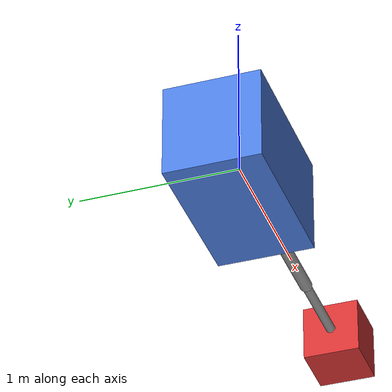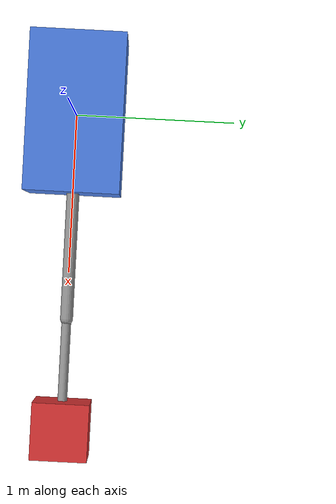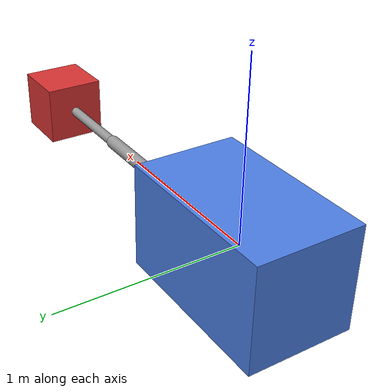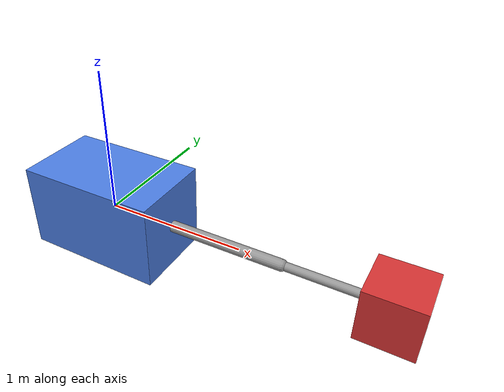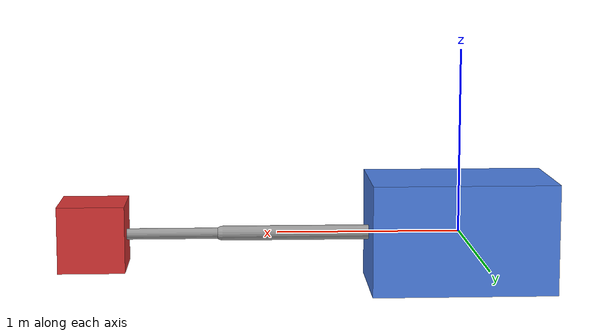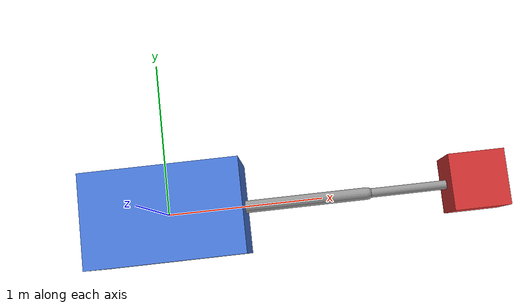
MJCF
<mujoco model="capture_arm">
  <compiler angle="radian"/>
  <option timestep="0.01" gravity="0 0 0">
    <flag contact="enable"/>
  </option>

  <default>
    <joint damping="0.5" armature="0.01"/>
    <geom condim="3" friction="0.5 0.005 0.0001"
          solref="0.01 1" solimp="0.9 0.95 0.001"
          rgba="0.6 0.6 0.6 1"/>
  </default>

  <worldbody>
    <!-- ============ Chaser bus + arm ============ -->
    <body name="spacecraft" pos="0 0 0">
      <freejoint name="base"/>
      <geom name="bus" type="box" size="0.5 0.3 0.3" mass="200"
            rgba="0.3 0.5 0.9 1" contype="1" conaffinity="1"/>

      <!-- Shoulder -->
      <body name="link1" pos="0.5 0 0">
        <joint name="shoulder" type="hinge" axis="0 1 0" range="-3.14 3.14"/>
        <geom name="upper_arm" type="capsule" fromto="0 0 0 0.8 0 0" size="0.04" mass="5"
              contype="1" conaffinity="1"/>

        <!-- Elbow -->
        <body name="link2" pos="0.8 0 0">
          <joint name="elbow" type="hinge" axis="0 1 0" range="-3.14 3.14"/>
          <geom name="forearm" type="capsule" fromto="0 0 0 0.6 0 0" size="0.03" mass="3"
                contype="1" conaffinity="1"/>

          <!-- End-effector -->
          <body name="ee" pos="0.6 0 0">
            <geom name="ee_sphere" type="sphere" size="0.08" mass="1"
                  rgba="0.95 0.65 0.1 1" contype="1" conaffinity="1"/>
          </body>
        </body>
      </body>
    </body>

    <!-- ============ Free-tumbling target ============ -->
    <body name="target" pos="2.0 0 0">
      <freejoint name="target_root"/>
      <geom name="target_box" type="box" size="0.18 0.18 0.18" mass="50"
            rgba="0.85 0.2 0.2 1" contype="1" conaffinity="1"/>
    </body>
  </worldbody>

  <actuator>
    <!-- MuJoCo-side position actuators on the arm joints. Driven by data.ctrl. -->
    <position name="shoulder_pos" joint="shoulder" kp="80" kv="6"
              ctrlrange="-3.14 3.14"/>
    <position name="elbow_pos" joint="elbow" kp="60" kv="4"
              ctrlrange="-3.14 3.14"/>
  </actuator>
</mujoco>
